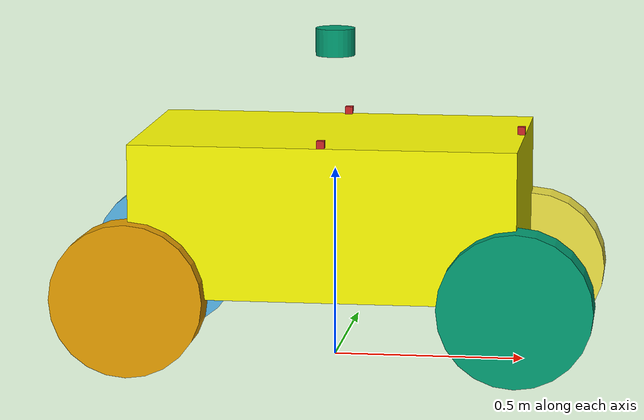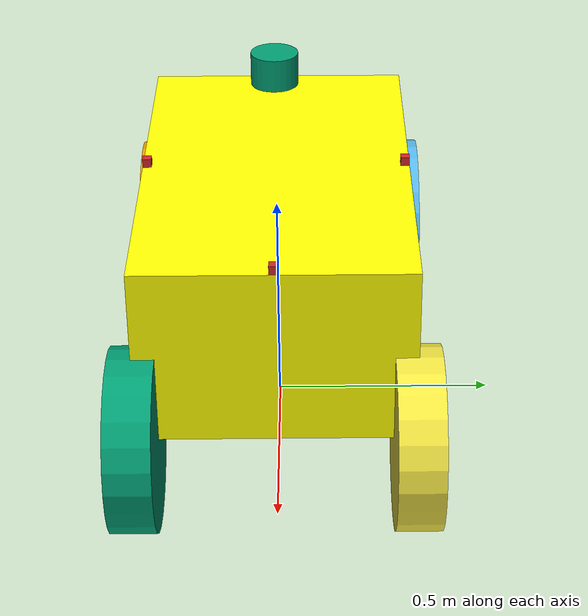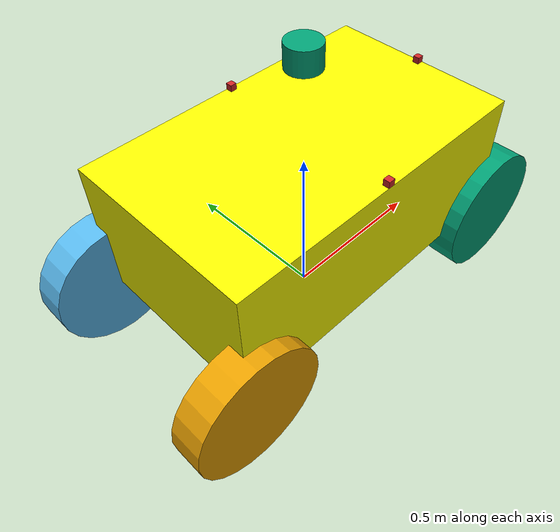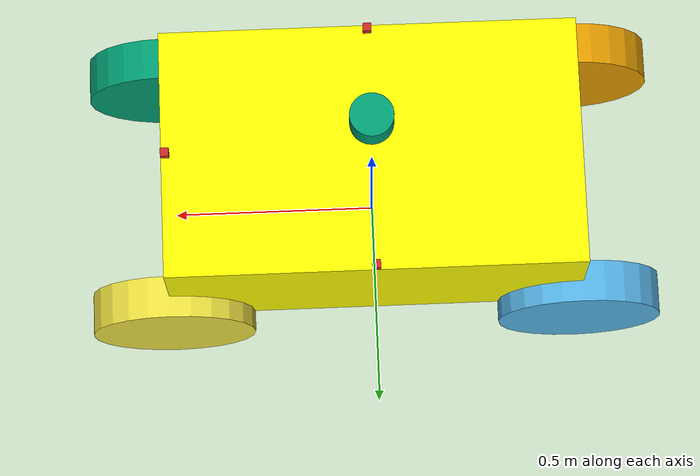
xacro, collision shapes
<?xml version="1.0" ?>

<robot name="airport_robot"
    xmlns:xacro="http://www.ros.org/wiki/xacro">
    <xacro:property name="robot_name" value="airport_robot"/>
    <xacro:property name="PI" value="3.1415926835897931"/>
    <xacro:property name="material_density" value="10.0"/>
    <!-- base -->
    <xacro:property name="base_length" value="1"/>
    <xacro:property name="base_width" value="0.6"/>
    <xacro:property name="base_height" value="0.4"/>
    <xacro:property name="base_collision_height" value="0.4"/>
    <xacro:property name="base_mass" value="${material_density*base_length*base_width*base_height}"/>
    <xacro:property name="base_mass_ixx" value="${(base_width*base_width+base_height*base_height)*base_mass/12.0}"/>
    <xacro:property name="base_mass_iyy" value="${(base_length*base_length+base_height*base_height)*base_mass/12.0}"/>
    <xacro:property name="base_mass_izz" value="${(base_width*base_width+base_width*base_width)*base_mass/12.0}"/>
    <!-- rear tyre -->
    <xacro:property name="rear_tyre_x" value="${base_length/2.0}"/>
    <xacro:property name="rear_tyre_y" value="${base_width/2.0}"/>
    <xacro:property name="rear_tyre_r" value="${base_collision_height/2.0}"/>
    <xacro:property name="rear_tyre_length" value="0.1"/>
    <xacro:property name="rear_tyre_mass" value="20"/>
    <xacro:property name="rear_tyre_mass_ixx" value="0.5"/>
    <xacro:property name="rear_tyre_mass_iyy" value="0.9"/>
    <xacro:property name="rear_tyre_mass_izz" value="0.5"/>
    <!-- front tyre -->
    <xacro:property name="front_tyre_x" value="${base_length/2.0}"/>
    <xacro:property name="front_tyre_y" value="${base_width/2.0}"/>
    <xacro:property name="front_tyre_r" value="${base_collision_height/2.0}"/>
    <xacro:property name="front_tyre_length" value="0.1"/>
    <xacro:property name="front_tyre_mass" value="20"/>
    <xacro:property name="front_tyre_mass_ixx" value="0.5"/>
    <xacro:property name="front_tyre_mass_iyy" value="0.9"/>
    <xacro:property name="front_tyre_mass_izz" value="0.5"/>
    <!-- steering -->
    <xacro:property name="str_angle" value="0.6"/>
    <xacro:property name="str_length" value="0.01"/>
    <xacro:property name="str_radius" value="0.1"/>
    <xacro:property name="str_mass" value="5"/>
    <xacro:property name="str_mass_ixx" value="0.012"/>
    <xacro:property name="str_mass_iyy" value="0.025"/>
    <xacro:property name="str_mass_izz" value="0.012"/>

    <!-- To fix the problem -->
    <!-- The root link base_link has an inertia specified in the URDF, but KDL does not support a root link with an inertia.  As a workaround, you can add an extra dummy link to your URDF. -->
    <link name="dummy">
    </link>
    <joint name="dummy_joint" type="fixed">
        <parent link="dummy"/>
        <child link="base_link"/>
    </joint>

    <!--Car Body-->
    <link name="base_link">
        <inertial>
            <origin xyz="0 0 ${base_collision_height}" rpy="0 0 0"/>
            <mass value="${base_mass}"/>
            <inertia ixx="${base_mass_ixx}" ixy="0" ixz="0" iyy="${base_mass_iyy}" iyz="0" izz="${base_mass_izz}" />
        </inertial>
        <visual>
            <origin xyz="0 0 ${base_collision_height}" rpy="0 0 0" />
            <geometry>
                <box size="${base_length} ${base_width} ${base_height}" />
            </geometry>
            <material name="Yellow">
                <color rgba="1.0 1.0 0.0 1.0"/>
            </material>
        </visual>
        <collision>
            <origin xyz="0 0 ${base_collision_height}" rpy="0 0 0"/>
            <geometry>
                <box size="${base_length} ${base_width} ${base_height}"/>
            </geometry>
        </collision>
    </link>

    <!--velodyne VLP-16-->
    <xacro:arg name="gpu" default="false"/>
    <xacro:property name="gpu" value="$(arg gpu)" />
    <xacro:arg name="organize_cloud" default="false"/>
    <xacro:property name="organize_cloud" value="$(arg organize_cloud)" />
    <xacro:include filename="$(find velodyne_description)/urdf/VLP-16.urdf.xacro"/>
    <xacro:VLP-16 parent="base_link" name="velodyne" topic="/points_raw" organize_cloud="${organize_cloud}" hz="11" samples="440" gpu="${gpu}">
        <origin xyz="0 0 0.8" rpy="0 0 0" />
    </xacro:VLP-16>

    <!--IMU sensor-->
    <joint name="imu_joint" type="fixed">
        <parent link="base_link"/>
        <child link="imu_link"/>
        <origin xyz="0 0 ${base_collision_height}" rpy="0 0 0"/>
    </joint>
    <link name="imu_link">
        <collision>
            <origin xyz="0 0 0" rpy="0 0 0"/>
            <geometry>
                <box size="0.1 0.1 0.1"/>
            </geometry>
        </collision>
        <visual>
            <origin xyz="0 0 0" rpy="0 0 0"/>
            <geometry>
                <box size="0.1 0.1 0.1"/>
            </geometry>
        </visual>
    </link>
    <gazebo reference="imu_link">
        <gravity>true</gravity>
        <sensor name="imu_sensor" type="imu">
            <always_on>true</always_on>
            <update_rate>200.0</update_rate>
            <visualize>true</visualize>
            <topic>__default_topic__</topic>
            <plugin filename="libgazebo_ros_imu_sensor.so" name="imu_plugin">
                <topicName>/imu</topicName>
                <frameName>imu_link</frameName>
                <updateRateHZ>200.0</updateRateHZ>
                <gaussianNoise>0.001</gaussianNoise>
                <xyzOffset>0 0 0</xyzOffset>
                <rpyOffset>0 0 0</rpyOffset>
            </plugin>
            <pose>0 0 0 0 0 0</pose>
        </sensor>
    </gazebo>

    <!--Camera1 sensor-->
    <joint name="camera1_joint" type="fixed">
        <axis xyz="0 1 0" />
        <origin xyz="${base_length/2-0.01} 0 ${base_height/2+base_collision_height+0.01}" rpy="0 0 0"/>
        <parent link="base_link"/>
        <child link="camera1_link"/>
    </joint>
    <link name="camera1_link">
        <collision>
            <origin xyz="0 0 0" rpy="0 0 0"/>
            <geometry>
                <box size="0.02 0.02 0.02"/>
            </geometry>
        </collision>
        <visual>
            <origin xyz="0 0 0" rpy="0 0 0"/>
            <geometry>
                <box size="0.02 0.02 0.02"/>
            </geometry>
            <material name="red" color="1 0 0 1"/>
        </visual>
    </link>
    <gazebo reference="camera1_link">
        <sensor type="camera" name="camera1">
            <update_rate>30.0</update_rate>
            <camera name="head">
                <horizontal_fov>1.74532925</horizontal_fov>
                <image>
                    <width>800</width>
                    <height>800</height>
                    <format>R8G8B8</format>
                </image>
                <clip>
                    <near>0.02</near>
                    <far>300</far>
                </clip>
                <noise>
                    <type>gaussian</type>
                    <!-- Noise is sampled independently per pixel on each frame.
               That pixel's noise value is added to each of its color
               channels, which at that point lie in the range [0,1]. -->
                    <mean>0.0</mean>
                    <stddev>0.007</stddev>
                </noise>
            </camera>
            <plugin name="camera_controller" filename="libgazebo_ros_camera.so">
                <alwaysOn>true</alwaysOn>
                <updateRate>0.0</updateRate>
                <cameraName>${robot_name}/camera1</cameraName>
                <imageTopicName>image_raw</imageTopicName>
                <cameraInfoTopicName>camera_info</cameraInfoTopicName>
                <frameName>camera_link</frameName>
                <hackBaseline>0.07</hackBaseline>
                <distortionK1>0.0</distortionK1>
                <distortionK2>0.0</distortionK2>
                <distortionK3>0.0</distortionK3>
                <distortionT1>0.0</distortionT1>
                <distortionT2>0.0</distortionT2>
            </plugin>
        </sensor>
    </gazebo>

    <!--Camera2 sensor-->
    <joint name="camera2_joint" type="fixed">
        <axis xyz="0 1 0" />
        <origin xyz="0 ${base_width/2-0.01} ${base_height/2+base_collision_height+0.01}" rpy="0 0 1.570796"/>
        <parent link="base_link"/>
        <child link="camera2_link"/>
    </joint>
    <link name="camera2_link">
        <collision>
            <origin xyz="0 0 0" rpy="0 0 0"/>
            <geometry>
                <box size="0.02 0.02 0.02"/>
            </geometry>
        </collision>
        <visual>
            <origin xyz="0 0 0" rpy="0 0 0"/>
            <geometry>
                <box size="0.02 0.02 0.02"/>
            </geometry>
            <material name="red" color="1 0 0 1"/>
        </visual>
    </link>
    <gazebo reference="camera2_link">
        <sensor type="camera" name="camera2">
            <update_rate>30.0</update_rate>
            <camera name="head">
                <horizontal_fov>1.74532925</horizontal_fov>
                <image>
                    <width>800</width>
                    <height>800</height>
                    <format>R8G8B8</format>
                </image>
                <clip>
                    <near>0.02</near>
                    <far>300</far>
                </clip>
                <noise>
                    <type>gaussian</type>
                    <!-- Noise is sampled independently per pixel on each frame.
               That pixel's noise value is added to each of its color
               channels, which at that point lie in the range [0,1]. -->
                    <mean>0.0</mean>
                    <stddev>0.007</stddev>
                </noise>
            </camera>
            <plugin name="camera_controller" filename="libgazebo_ros_camera.so">
                <alwaysOn>true</alwaysOn>
                <updateRate>0.0</updateRate>
                <cameraName>${robot_name}/camera2</cameraName>
                <imageTopicName>image_raw</imageTopicName>
                <cameraInfoTopicName>camera_info</cameraInfoTopicName>
                <frameName>camera_link</frameName>
                <hackBaseline>0.07</hackBaseline>
                <distortionK1>0.0</distortionK1>
                <distortionK2>0.0</distortionK2>
                <distortionK3>0.0</distortionK3>
                <distortionT1>0.0</distortionT1>
                <distortionT2>0.0</distortionT2>
            </plugin>
        </sensor>
    </gazebo>

    <!--Camera3 sensor-->
    <joint name="camera3_joint" type="fixed">
        <axis xyz="0 1 0" />
        <origin xyz="0 -${base_width/2-0.01} ${base_height/2+base_collision_height+0.01}" rpy="0 0 -1.570796"/>
        <parent link="base_link"/>
        <child link="camera3_link"/>
    </joint>
    <link name="camera3_link">
        <collision>
            <origin xyz="0 0 0" rpy="0 0 0"/>
            <geometry>
                <box size="0.02 0.02 0.02"/>
            </geometry>
        </collision>
        <visual>
            <origin xyz="0 0 0" rpy="0 0 0"/>
            <geometry>
                <box size="0.02 0.02 0.02"/>
            </geometry>
            <material name="red" color="1 0 0 1"/>
        </visual>
    </link>
    <gazebo reference="camera3_link">
        <sensor type="camera" name="camera3">
            <update_rate>30.0</update_rate>
            <camera name="head">
                <horizontal_fov>1.74532925</horizontal_fov>
                <image>
                    <width>800</width>
                    <height>800</height>
                    <format>R8G8B8</format>
                </image>
                <clip>
                    <near>0.02</near>
                    <far>300</far>
                </clip>
                <noise>
                    <type>gaussian</type>
                    <!-- Noise is sampled independently per pixel on each frame.
               That pixel's noise value is added to each of its color
               channels, which at that point lie in the range [0,1]. -->
                    <mean>0.0</mean>
                    <stddev>0.007</stddev>
                </noise>
            </camera>
            <plugin name="camera_controller" filename="libgazebo_ros_camera.so">
                <alwaysOn>true</alwaysOn>
                <updateRate>0.0</updateRate>
                <cameraName>${robot_name}/camera3</cameraName>
                <imageTopicName>image_raw</imageTopicName>
                <cameraInfoTopicName>camera_info</cameraInfoTopicName>
                <frameName>camera_link</frameName>
                <hackBaseline>0.07</hackBaseline>
                <distortionK1>0.0</distortionK1>
                <distortionK2>0.0</distortionK2>
                <distortionK3>0.0</distortionK3>
                <distortionT1>0.0</distortionT1>
                <distortionT2>0.0</distortionT2>
            </plugin>
        </sensor>
    </gazebo>

    <!--Rear Right Wheel-->
    <joint name="rear_right_wheel_joint" type="continuous">
        <parent link="base_link"/>
        <child link="rear_right_wheel_link"/>
        <origin xyz="${-rear_tyre_x} ${-rear_tyre_y} ${rear_tyre_r}" rpy="0 0 0"/>
        <axis xyz="0 1 0"/>
        <dynamics damping="0.1"/>
        <limit effort="1000000" velocity="10000" />
        <joint_properties damping="0.0" friction="0.0" />
    </joint>
    <link name="rear_right_wheel_link">
        <collision>
            <origin xyz="0 0 0" rpy="${PI/2} 0 0"/>
            <geometry>
                <cylinder length="${rear_tyre_length}" radius="${rear_tyre_r}"/>
            </geometry>
        </collision>
        <visual>
            <origin xyz="0 0 0" rpy="${PI/2} 0 0"/>
            <geometry>
                <cylinder length="${rear_tyre_length}" radius="${rear_tyre_r}"/>
            </geometry>
        </visual>
        <inertial>
            <origin xyz="0 0 0" rpy="0 0 0"/>
            <mass value="${rear_tyre_mass}"/>
            <inertia ixx="${rear_tyre_mass_ixx}" ixy="0.000000" ixz="0.000000" iyy="${rear_tyre_mass_iyy}" iyz="0.000000" izz="${rear_tyre_mass_izz}"/>
        </inertial>
    </link>

    <!--Rear Left Wheel-->
    <joint name="rear_left_wheel_joint" type="continuous">
        <parent link="base_link"/>
        <child link="rear_left_wheel_link"/>
        <origin xyz="${-rear_tyre_x} ${rear_tyre_y} ${rear_tyre_r}" rpy="0 0 0"/>
        <axis xyz="0 1 0"/>
        <dynamics damping="0.1"/>
        <limit effort="1000000" velocity="10000" />
        <joint_properties damping="0.0" friction="0.0" />
    </joint>
    <link name="rear_left_wheel_link">
        <collision>
            <origin xyz="0 0 0" rpy="${PI/2} 0 0"/>
            <geometry>
                <cylinder length="${rear_tyre_length}" radius="${rear_tyre_r}"/>
            </geometry>
        </collision>
        <visual>
            <origin xyz="0 0 0" rpy="${PI/2} 0 0"/>
            <geometry>
                <cylinder length="${rear_tyre_length}" radius="${rear_tyre_r}"/>
            </geometry>
        </visual>
        <inertial>
            <origin xyz="0 0 0" rpy="0 0 0"/>
            <mass value="${rear_tyre_mass}"/>
            <inertia ixx="${rear_tyre_mass_ixx}" ixy="0.000000" ixz="0.000000" iyy="${rear_tyre_mass_iyy}" iyz="0.000000" izz="${rear_tyre_mass_izz}"/>
        </inertial>
    </link>

    <!--Front Right Wheel-->
    <joint name="front_right_wheel_joint" type="continuous">
        <parent link="base_link"/>
        <child link="front_right_wheel_link"/>
        <origin xyz="${front_tyre_x} ${-front_tyre_y} ${front_tyre_r}" rpy="0 0 0"/>
        <axis xyz="0 1 0"/>
        <dynamics damping="0.1"/>
        <limit effort="1000000" velocity="10000" />
        <joint_properties damping="0.0" friction="0.0" />

    </joint>
    <link name="front_right_wheel_link">
        <collision>
            <origin xyz="0 0 0" rpy="${PI/2} 0 0"/>
            <geometry>
                <cylinder length="${front_tyre_length}" radius="${front_tyre_r}"/>
            </geometry>
        </collision>
        <visual>
            <origin xyz="0 0 0" rpy="${PI/2} 0 0"/>
            <geometry>
                <cylinder length="${front_tyre_length}" radius="${front_tyre_r}"/>
            </geometry>
        </visual>
        <inertial>
            <origin xyz="0 0 0" rpy="0 0 0"/>
            <mass value="${front_tyre_mass}"/>
            <inertia ixx="${front_tyre_mass_ixx}" ixy="0.000000" ixz="0.000000" iyy="${front_tyre_mass_iyy}" iyz="0.000000" izz="${front_tyre_mass_izz}"/>
        </inertial>
    </link>

    <!--Front Left Wheel-->
    <joint name="front_left_wheel_joint" type="continuous">
        <parent link="base_link"/>
        <child link="front_left_wheel_link"/>
        <origin xyz="${front_tyre_x} ${front_tyre_y} ${front_tyre_r}" rpy="0 0 0"/>
        <axis xyz="0 1 0"/>
        <dynamics damping="0.1"/>
        <limit effort="1000000" velocity="10000" />
        <joint_properties damping="0.0" friction="0.0" />

    </joint>
    <link name="front_left_wheel_link">
        <collision>
            <origin xyz="0 0 0" rpy="${PI/2} 0 0"/>
            <geometry>
                <cylinder length="${front_tyre_length}" radius="${front_tyre_r}"/>
            </geometry>
        </collision>
        <visual>
            <origin xyz="0 0 0" rpy="${PI/2} 0 0"/>
            <geometry>
                <cylinder length="${front_tyre_length}" radius="${front_tyre_r}"/>
            </geometry>
        </visual>
        <inertial>
            <origin xyz="0 0 0" rpy="0 0 0"/>
            <mass value="${front_tyre_mass}"/>
            <inertia ixx="${front_tyre_mass_ixx}" ixy="0.000000" ixz="0.000000" iyy="${front_tyre_mass_iyy}" iyz="0.000000" izz="${front_tyre_mass_izz}"/>
        </inertial>
    </link>

    <!-- motors and transmissions for the two rear wheels -->
    <transmission name="tran1">
        <type>transmission_interface/SimpleTransmission</type>
        <joint name="rear_right_wheel_joint">
            <hardwareInterface>hardware_interface/VelocityJointInterface</hardwareInterface>
        </joint>
        <actuator name="motor1">
            <hardwareInterface>hardware_interface/VelocityJointInterface</hardwareInterface>
            <mechanicalReduction>1</mechanicalReduction>
        </actuator>
    </transmission>
    <transmission name="tran2">
        <type>transmission_interface/SimpleTransmission</type>
        <joint name="rear_left_wheel_joint">
            <hardwareInterface>hardware_interface/VelocityJointInterface</hardwareInterface>
        </joint>
        <actuator name="motor2">
            <hardwareInterface>hardware_interface/VelocityJointInterface</hardwareInterface>
            <mechanicalReduction>1</mechanicalReduction>
        </actuator>
    </transmission>

    <!-- EPS and transmissions for the front steering -->
    <transmission name="tran3">
        <type>transmission_interface/SimpleTransmission</type>
        <joint name="front_right_wheel_joint">
            <hardwareInterface>hardware_interface/VelocityJointInterface</hardwareInterface>
        </joint>
        <actuator name="motor3">
            <hardwareInterface>hardware_interface/VelocityJointInterface</hardwareInterface>
            <mechanicalReduction>1</mechanicalReduction>
        </actuator>
    </transmission>
    <transmission name="tran4">
        <type>transmission_interface/SimpleTransmission</type>
        <joint name="front_left_wheel_joint">
            <hardwareInterface>hardware_interface/VelocityJointInterface</hardwareInterface>
        </joint>
        <actuator name="motor4">
            <hardwareInterface>hardware_interface/VelocityJointInterface</hardwareInterface>
            <mechanicalReduction>1</mechanicalReduction>
        </actuator>
    </transmission>

    <!-- Friction Parametres -->
    <gazebo reference="rear_right_wheel_link">
        <mu1>10000000</mu1>
        <mu2>10000000</mu2>
        <kp>10000000</kp>
        <kd>1</kd>
    </gazebo>
    <gazebo reference="rear_left_wheel_link">
        <mu1>10000000</mu1>
        <mu2>10000000</mu2>
        <kp>10000000</kp>
        <kd>1</kd>
    </gazebo>
    <gazebo reference="front_right_wheel_link">
        <mu1>10000000</mu1>
        <mu2>10000000</mu2>
        <kp>10000000</kp>
        <kd>1</kd>
    </gazebo>
    <gazebo reference="front_left_wheel_link">
        <mu1>10000000</mu1>
        <mu2>10000000</mu2>
        <kp>10000000</kp>
        <kd>1</kd>
    </gazebo>

    <!-- Gazebo Plugins -->
    <gazebo>
        <plugin name="gazebo_ros_control" filename="libgazebo_ros_control.so">
            <robotNamespace>/${robot_name}</robotNamespace>
            <robotParam>robot_description</robotParam>
            <robotSimType>gazebo_ros_control/DefaultRobotHWSim</robotSimType>
        </plugin>
    </gazebo>
    <gazebo>
        <plugin name="joint_state_publisher" filename="libgazebo_ros_joint_state_publisher.so">
            <jointName>rear_left_wheel_joint, rear_right_wheel_joint, front_right_wheel_joint, front_left_wheel_joint</jointName>
            <updateRate>50.0</updateRate>
            <robotNamespace>/${robot_name}</robotNamespace>
            <alwaysOn>true</alwaysOn>
        </plugin>
    </gazebo>

</robot>

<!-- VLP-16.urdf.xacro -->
<robot xmlns:xacro="http://www.ros.org/wiki/xacro" name="VLP-16">
  <xacro:property name="M_PI" value="3.1415926535897931" />
  <xacro:macro name="VLP-16" params="*origin is_sim:=true parent:=base_link name:=velodyne tf_prefix:='' topic:=/velodyne_points organize_cloud:=false hz:=10 lasers:=16 samples:=1875 collision_range:=0.3 min_range:=0.0 max_range:=100.0 noise:=0.008 min_angle:=-${M_PI} max_angle:=${M_PI} gpu:=false">

    <joint name="${name}_base_mount_joint" type="fixed">
      <xacro:insert_block name="origin" />
      <parent link="${parent}"/>
      <child link="${name}_base_link"/>
    </joint>

    <link name="${name}_base_link">
      <inertial>
        <mass value="0.83"/>
        <origin xyz="0 0 0.03585"/>
        <inertia ixx="${(0.83 * (3.0*0.0516*0.0516 + 0.0717*0.0717)) / 12.0}" ixy="0" ixz="0"
          iyy="${(0.83 * (3.0*0.0516*0.0516 + 0.0717*0.0717)) / 12.0}" iyz="0"
          izz="${0.5 * 0.83 * (0.0516*0.0516)}"/>
      </inertial>
      <visual>
        <geometry>
          <mesh filename="package://velodyne_description/meshes/VLP16_base_1.dae" />
        </geometry>
      </visual>
      <visual>
        <geometry>
          <mesh filename="package://velodyne_description/meshes/VLP16_base_2.dae" />
        </geometry>
      </visual>
      <collision>
        <origin rpy="0 0 0" xyz="0 0 0.03585"/>
        <geometry>
          <cylinder radius="0.0516" length="0.0717"/>
        </geometry>
      </collision>
    </link>

    <joint name="${name}_base_scan_joint" type="fixed" >
      <origin xyz="0 0 0.0377" rpy="0 0 0" />
      <parent link="${name}_base_link" />
      <child link="${name}"/>
    </joint>

    <link name="${name}">
      <inertial>
        <mass value="0.01"/>
        <origin xyz="0 0 0"/>
        <inertia ixx="1e-7" ixy="0" ixz="0" iyy="1e-7" iyz="0" izz="1e-7"/>
      </inertial>
      <visual>
        <origin xyz="0 0 -0.0377" />
        <geometry>
          <mesh filename="package://velodyne_description/meshes/VLP16_scan.dae" />
        </geometry>
      </visual>
      <collision>
        <geometry>
          <sphere radius="0"/>
        </geometry>
      </collision>
    </link>

    <!-- Gazebo requires the velodyne_gazebo_plugins package -->
    <xacro:if value="${is_sim}">
        <gazebo reference="${name}">
            <xacro:if value="${gpu}">
                <sensor type="gpu_ray" name="${name}-VLP16">
                <pose>0 0 0 0 0 0</pose>
                <visualize>false</visualize>
                <update_rate>${hz}</update_rate>
                <ray>
                    <scan>
                    <horizontal>
                        <samples>${samples}</samples>
                        <resolution>1</resolution>
                        <min_angle>${min_angle}</min_angle>
                        <max_angle>${max_angle}</max_angle>
                    </horizontal>
                    <vertical>
                        <samples>${lasers}</samples>
                        <resolution>1</resolution>
                        <min_angle>-${15.0*M_PI/180.0}</min_angle>
                        <max_angle> ${15.0*M_PI/180.0}</max_angle>
                    </vertical>
                    </scan>
                    <range>
                    <min>${collision_range}</min>
                    <max>${max_range+1}</max>
                    <resolution>0.001</resolution>
                    </range>
                    <noise>
                    <type>gaussian</type>
                    <mean>0.0</mean>
                    <stddev>0.0</stddev>
                    </noise>
                </ray>
                <plugin name="gazebo_ros_laser_controller" filename="libgazebo_ros_velodyne_laser.so">
                    <ros>
                    <namespace>/${name}</namespace>
                    <remapping>~/out:=${topic}</remapping>
                    </ros>
                    <tf_prefix>${tf_prefix}</tf_prefix>
                    <frame_name>${name}</frame_name>
                    <organize_cloud>${organize_cloud}</organize_cloud>
                    <min_range>${min_range}</min_range>
                    <max_range>${max_range}</max_range>
                    <gaussian_noise>${noise}</gaussian_noise>
                </plugin>
                </sensor>
            </xacro:if>
            <xacro:unless value="${gpu}">
                <sensor type="ray" name="${name}-VLP16">
                <pose>0 0 0 0 0 0</pose>
                <visualize>false</visualize>
                <update_rate>${hz}</update_rate>
                <ray>
                    <scan>
                    <horizontal>
                        <samples>${samples}</samples>
                        <resolution>1</resolution>
                        <min_angle>${min_angle}</min_angle>
                        <max_angle>${max_angle}</max_angle>
                    </horizontal>
                    <vertical>
                        <samples>${lasers}</samples>
                        <resolution>1</resolution>
                        <min_angle>-${15.0*M_PI/180.0}</min_angle>
                        <max_angle> ${15.0*M_PI/180.0}</max_angle>
                    </vertical>
                    </scan>
                    <range>
                    <min>${collision_range}</min>
                    <max>${max_range+1}</max>
                    <resolution>0.001</resolution>
                    </range>
                    <noise>
                    <type>gaussian</type>
                    <mean>0.0</mean>
                    <stddev>0.0</stddev>
                    </noise>
                </ray>
                <plugin name="gazebo_ros_laser_controller" filename="libgazebo_ros_velodyne_laser.so">
                    <ros>
                    <namespace>/${name}</namespace>
                    <remapping>~/out:=${topic}</remapping>
                    </ros>
                    <tf_prefix>${tf_prefix}</tf_prefix>
                    <frame_name>${name}</frame_name>
                    <organize_cloud>${organize_cloud}</organize_cloud>
                    <min_range>${min_range}</min_range>
                    <max_range>${max_range}</max_range>
                    <gaussian_noise>${noise}</gaussian_noise>
                </plugin>
                </sensor>
            </xacro:unless>
        </gazebo>
    </xacro:if>

  </xacro:macro>
</robot>
